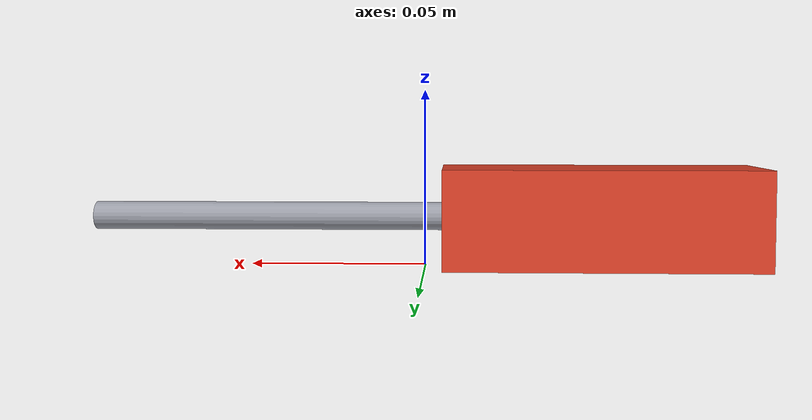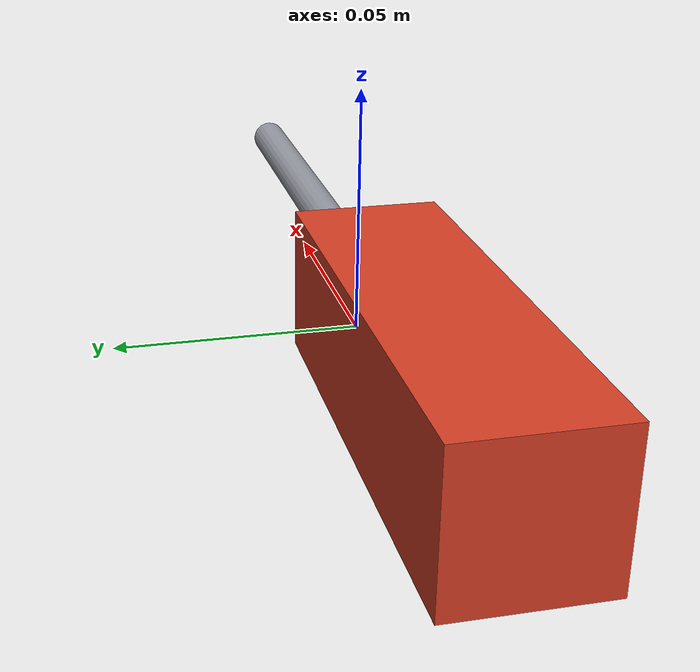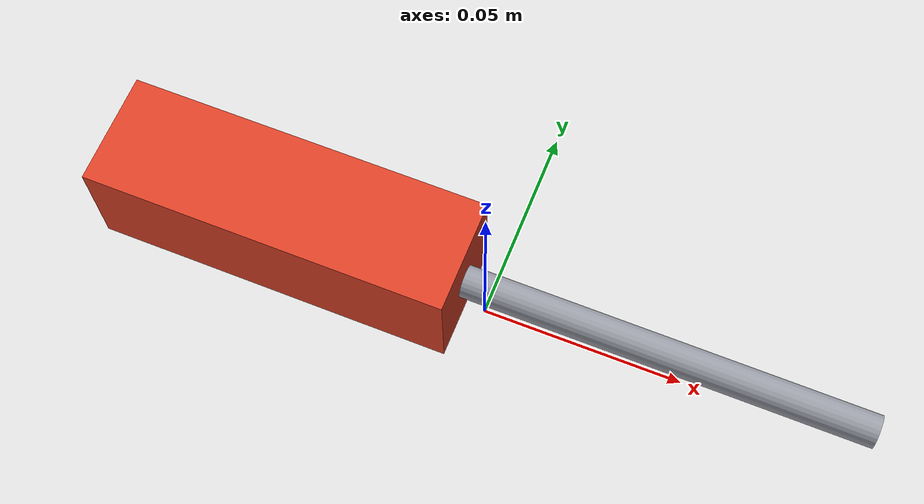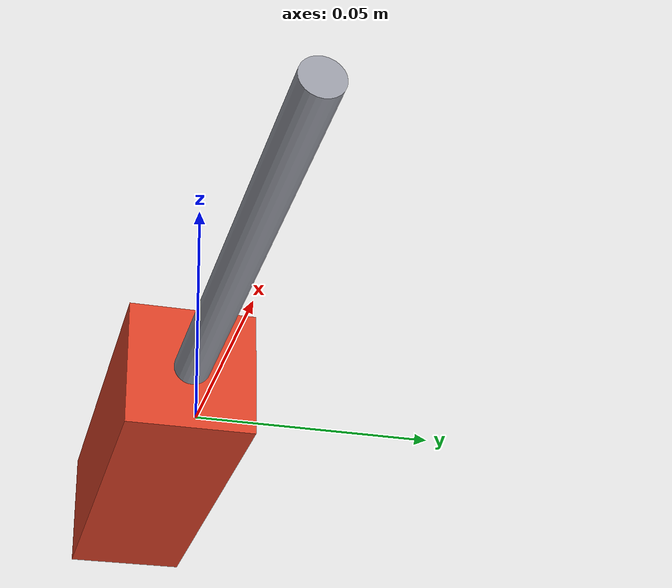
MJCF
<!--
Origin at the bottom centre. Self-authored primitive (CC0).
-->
<mujoco model="screwdriver">
  <asset>
    <material name="mat" rgba="0.85 0.25 0.15 1"/>
    <material name="steel_mat" rgba="0.60 0.61 0.65 1"/>
  </asset>
  <worldbody>
    <body name="screwdriver">
      <freejoint/>
      <geom name="grip" type="box" size="0.045 0.014 0.014" pos="-0.050 0 0.014" mass="0.05"
            material="mat" condim="4" friction="1.0 0.02 0.0005" solimp="0.95 0.99 0.001" solref="0.008 1"/>
      <geom name="shaft" type="cylinder" fromto="-0.005 0 0.014 0.095 0 0.014" size="0.004" mass="0.04"
            material="steel_mat" condim="4" friction="0.7 0.01 0.0002" solimp="0.97 0.995 0.001" solref="0.006 1"/>
    </body>
  </worldbody>
</mujoco>
